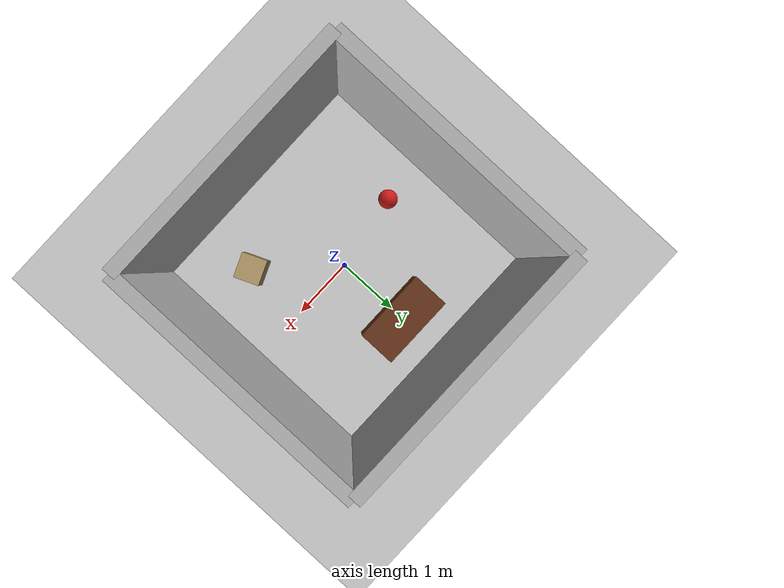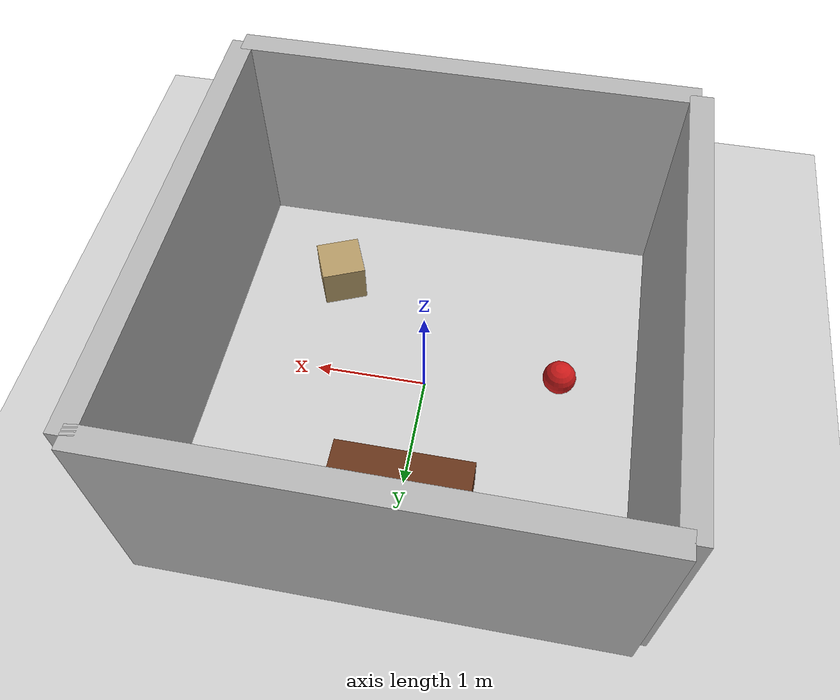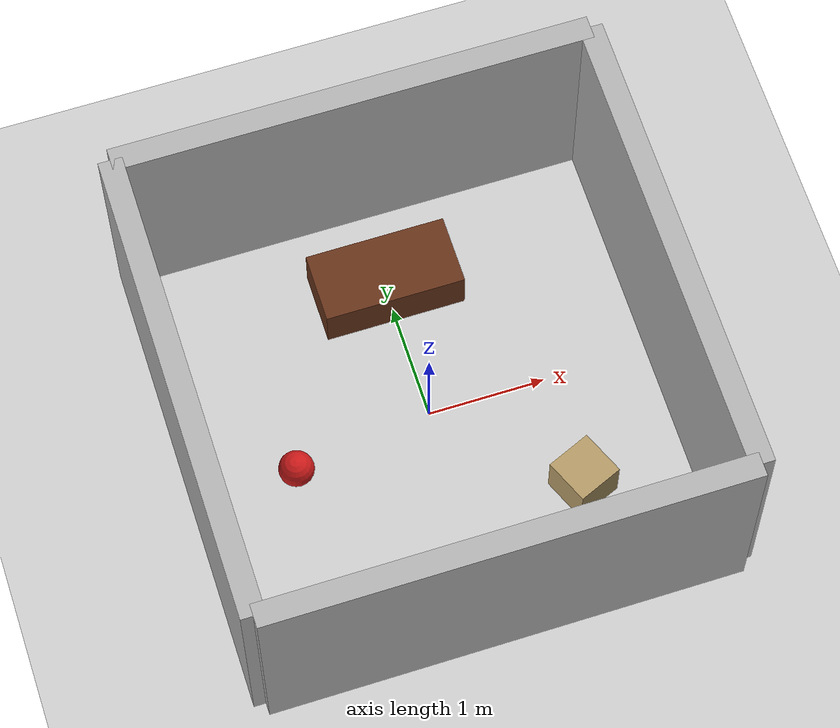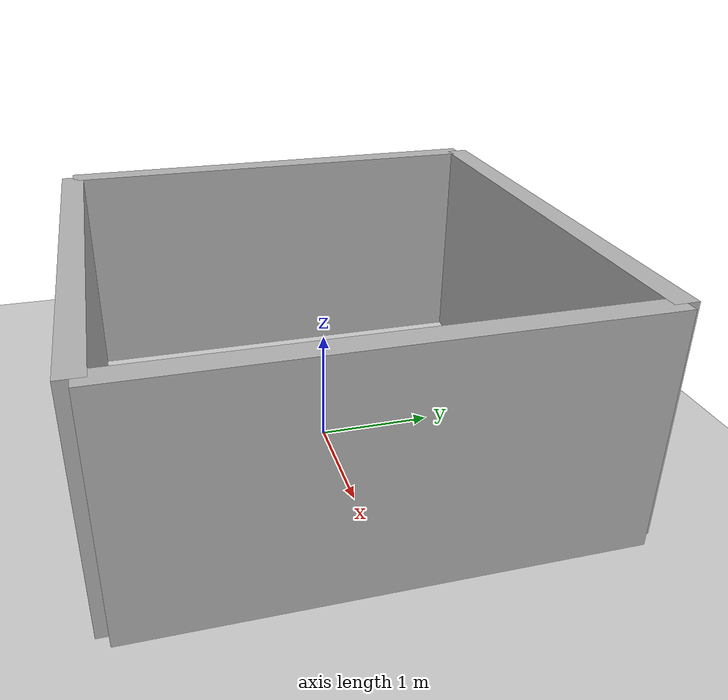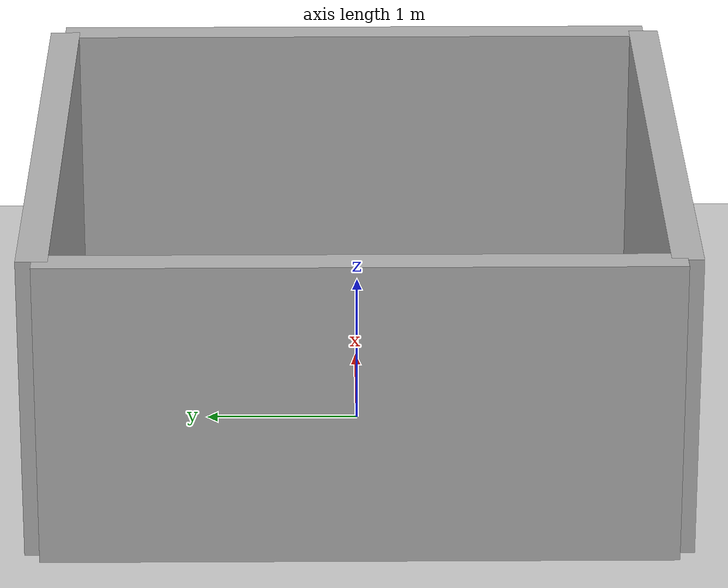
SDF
<?xml version="1.0" ?>
<sdf version="1.7">
  <world name="small_test_room">
    <plugin filename="gz-sim-physics-system" name="gz::sim::systems::Physics"></plugin>
    <plugin filename="gz-sim-user-commands-system" name="gz::sim::systems::UserCommands"></plugin>
    <plugin filename="gz-sim-scene-broadcaster-system" name="gz::sim::systems::SceneBroadcaster"></plugin>
    <plugin filename="gz-sim-sensors-system" name="gz::sim::systems::Sensors">
      <render_engine>ogre2</render_engine>
    </plugin>
    <scene>
      <ambient>1.0 1.0 1.0 1</ambient>
      <background>0.5 0.5 0.5 1</background>
      <shadows>true</shadows>
    </scene>

    <light type="directional" name="sun">
      <cast_shadows>true</cast_shadows>
      <pose>0 0 10 0 0 0</pose>
      <diffuse>0.8 0.8 0.8 1</diffuse>
      <specular>0.2 0.2 0.2 1</specular>
      <direction>-0.5 0.1 -0.9</direction>
    </light>

    <model name="ground_plane">
      <static>true</static>
      <link name="link">
        <collision name="collision"><geometry><plane><normal>0 0 1</normal><size>20 20</size></plane></geometry></collision>
        <visual name="visual">
          <geometry><plane><normal>0 0 1</normal><size>20 20</size></plane></geometry>
          <material><ambient>0.8 0.8 0.8 1</ambient><diffuse>0.8 0.8 0.8 1</diffuse></material>
        </visual>
      </link>
    </model>

    <model name="walls">
      <static>true</static>
      <link name="link">
        <collision name="n_col"><pose>0 2 1 0 0 0</pose><geometry><box><size>4 0.2 2</size></box></geometry></collision>
        <visual name="n_vis"><pose>0 2 1 0 0 0</pose><geometry><box><size>4 0.2 2</size></box></geometry><material><ambient>0.7 0.7 0.7 1</ambient><diffuse>0.7 0.7 0.7 1</diffuse></material></visual>

        <collision name="s_col"><pose>0 -2 1 0 0 0</pose><geometry><box><size>4 0.2 2</size></box></geometry></collision>
        <visual name="s_vis"><pose>0 -2 1 0 0 0</pose><geometry><box><size>4 0.2 2</size></box></geometry><material><ambient>0.7 0.7 0.7 1</ambient><diffuse>0.7 0.7 0.7 1</diffuse></material></visual>

        <collision name="e_col"><pose>2 0 1 0 0 0</pose><geometry><box><size>0.2 4 2</size></box></geometry></collision>
        <visual name="e_vis"><pose>2 0 1 0 0 0</pose><geometry><box><size>0.2 4 2</size></box></geometry><material><ambient>0.7 0.7 0.7 1</ambient><diffuse>0.7 0.7 0.7 1</diffuse></material></visual>

        <collision name="w_col"><pose>-2 0 1 0 0 0</pose><geometry><box><size>0.2 4 2</size></box></geometry></collision>
        <visual name="w_vis"><pose>-2 0 1 0 0 0</pose><geometry><box><size>0.2 4 2</size></box></geometry><material><ambient>0.7 0.7 0.7 1</ambient><diffuse>0.7 0.7 0.7 1</diffuse></material></visual>
      </link>
    </model>

    <model name="coffee_table">
      <static>true</static>
      <pose>0 1.2 0.2 0 0 0</pose>
      <link name="link">
        <collision name="col"><geometry><box><size>1.2 0.6 0.4</size></box></geometry></collision>
        <visual name="vis">
          <geometry><box><size>1.2 0.6 0.4</size></box></geometry>
          <material><ambient>0.4 0.2 0.1 1</ambient><diffuse>0.4 0.2 0.1 1</diffuse></material>
        </visual>
      </link>
    </model>

    <model name="toy_ball">
      <static>false</static>
      <pose>-1.2 -0.2 0.15 0 0 0</pose>
      <link name="link">
        <collision name="col"><geometry><sphere><radius>0.15</radius></sphere></geometry></collision>
        <visual name="vis">
          <geometry><sphere><radius>0.15</radius></sphere></geometry>
          <material><ambient>0.8 0.1 0.1 1</ambient><diffuse>0.8 0.1 0.1 1</diffuse></material> </visual>
        <inertial>
          <mass>0.5</mass>
          <inertia><ixx>0.004</ixx><iyy>0.004</iyy><izz>0.004</izz></inertia>
        </inertial>
      </link>
    </model>

    <model name="cardboard_box">
      <static>true</static>
      <pose>1.0 -1.0 0.2 0 0 0.4</pose>
      <link name="link">
        <collision name="col"><geometry><box><size>0.4 0.4 0.4</size></box></geometry></collision>
        <visual name="vis">
          <geometry><box><size>0.4 0.4 0.4</size></box></geometry>
          <material><ambient>0.7 0.6 0.4 1</ambient><diffuse>0.7 0.6 0.4 1</diffuse></material> </visual>
      </link>
    </model>

  </world>
</sdf>
